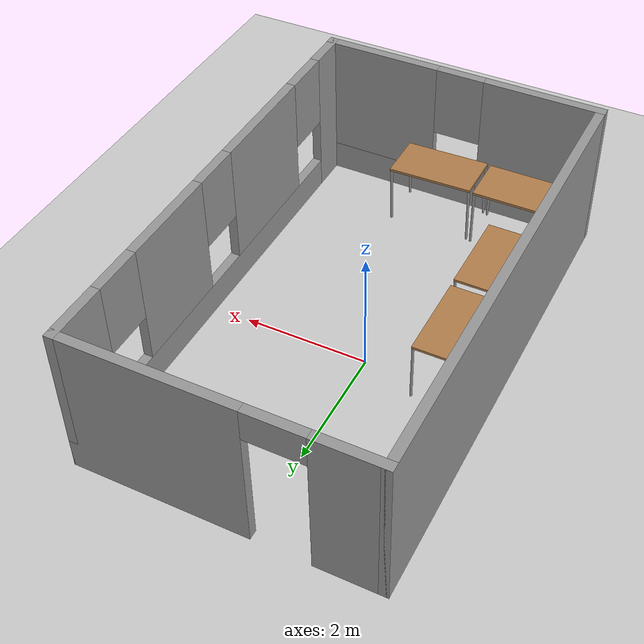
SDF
<sdf version="1.6">
 <world name="default">
  <light name="sun" type="directional">
   <pose>0 0 10 0 -0 0</pose>
   <diffuse>0.8 0.8 0.8 1</diffuse>
   <specular>0.1 0.1 0.1 1</specular>
   <attenuation>
    <range>1000</range>
    <constant>0.9</constant>
    <linear>0.01</linear>
    <quadratic>0.001</quadratic>
   </attenuation>
   <direction>-0.5 0.5 -1</direction>
  </light>
  <model name="ground_plane">
   <static>1</static>
   <link name="link">
    <collision name="collision">
     <geometry><plane><normal>0 0 1</normal><size>100 100</size></plane></geometry>
     <surface><friction><ode><mu>100</mu><mu2>50</mu2></ode></friction></surface>
    </collision>
    <visual name="visual">
     <cast_shadows>0</cast_shadows>
     <geometry><plane><normal>0 0 1</normal><size>100 100</size></plane></geometry>
     <material>
      <script><uri>file://media/materials/scripts/gazebo.material</uri><name>Gazebo/Grey</name></script>
     </material>
    </visual>
   </link>
  </model>
  <gravity>0 0 -9.8</gravity>
  <magnetic_field>6e-06 2.3e-05 -4.2e-05</magnetic_field>
  <atmosphere type="adiabatic"/>
  <physics name="default_physics" default="0" type="ode">
   <max_step_size>0.001</max_step_size>
   <real_time_factor>1</real_time_factor>
   <real_time_update_rate>1000</real_time_update_rate>
  </physics>
  <scene><ambient>0.4 0.4 0.4 1</ambient><background>0.7 0.7 0.7 1</background><shadows>1</shadows></scene>
  <spherical_coordinates>
   <surface_model>EARTH_WGS84</surface_model>
   <latitude_deg>0</latitude_deg>
   <longitude_deg>0</longitude_deg>
   <elevation>0</elevation>
   <heading_deg>0</heading_deg>
  </spherical_coordinates>
  <model name="Surveillance_room">
   <pose>0.34865 -0.391231 0 0 -0 0</pose>
   <link name="Wall_14">
    <collision name="Wall_14_Collision">
     <geometry><box><size>7.75 0.15 2.5</size></box></geometry>
     <pose>0 0 1.25 0 -0 0</pose>
    </collision>
    <visual name="Wall_14_Visual">
     <pose>0 0 1.25 0 -0 0</pose>
     <geometry><box><size>7.75 0.15 2.5</size></box></geometry>
     <material>
      <script><uri>file://media/materials/scripts/gazebo.material</uri><name>Gazebo/Grey</name></script>
      <ambient>1 1 1 1</ambient>
     </material>
    </visual>
    <pose>-2.3 0 0 0 -0 1.5708</pose>
   </link>
   <link name="Wall_18">
    <pose>0 -3.8 0 0 -0 0</pose>
    <visual name="Wall_18_Visual_0">
     <pose>-1.38437 0 1.25 0 -0 0</pose>
     <geometry><box><size>1.98127 0.15 2.5</size></box></geometry>
     <material>
      <script><uri>file://media/materials/scripts/gazebo.material</uri><name>Gazebo/Grey</name></script>
      <ambient>1 1 1 1</ambient>
     </material>
    </visual>
    <collision name="Wall_18_Collision_0">
     <geometry><box><size>1.98127 0.15 2.5</size></box></geometry>
     <pose>-1.38437 0 1.25 0 -0 0</pose>
    </collision>
    <visual name="Wall_18_Visual_1">
     <pose>0.990633 0 0.25 0 -0 0</pose>
     <geometry><box><size>2.76873 0.15 0.5</size></box></geometry>
     <material>
      <script><uri>file://media/materials/scripts/gazebo.material</uri><name>Gazebo/Grey</name></script>
      <ambient>1 1 1 1</ambient>
     </material>
    </visual>
    <collision name="Wall_18_Collision_1">
     <geometry><box><size>2.76873 0.15 0.5</size></box></geometry>
     <pose>0.990633 0 0.25 0 -0 0</pose>
    </collision>
    <visual name="Wall_18_Visual_2">
     <pose>1.39063 0 1.5 0 -0 0</pose>
     <geometry><box><size>1.96873 0.15 2</size></box></geometry>
     <material>
      <script><uri>file://media/materials/scripts/gazebo.material</uri><name>Gazebo/Grey</name></script>
      <ambient>1 1 1 1</ambient>
     </material>
    </visual>
    <collision name="Wall_18_Collision_2">
     <geometry><box><size>1.96873 0.15 2</size></box></geometry>
     <pose>1.39063 0 1.5 0 -0 0</pose>
    </collision>
    <visual name="Wall_18_Visual_3">
     <pose>0.006267 0 1.9 0 -0 0</pose>
     <geometry><box><size>0.8 0.15 1.2</size></box></geometry>
     <material>
      <script><uri>file://media/materials/scripts/gazebo.material</uri><name>Gazebo/Grey</name></script>
      <ambient>1 1 1 1</ambient>
     </material>
    </visual>
    <collision name="Wall_18_Collision_3">
     <geometry><box><size>0.8 0.15 1.2</size></box></geometry>
     <pose>0.006267 0 1.9 0 -0 0</pose>
    </collision>
   </link>
   <link name="Wall_20">
    <pose>2.3 0 0 0 -0 1.5708</pose>
    <visual name="Wall_20_Visual_0">
     <pose>-3.50746 0 1.25 0 -0 0</pose>
     <geometry><box><size>0.735088 0.15 2.5</size></box></geometry>
     <material>
      <script><uri>file://media/materials/scripts/gazebo.material</uri><name>Gazebo/Grey</name></script>
      <ambient>1 1 1 1</ambient>
     </material>
    </visual>
    <collision name="Wall_20_Collision_0">
     <geometry><box><size>0.735088 0.15 2.5</size></box></geometry>
     <pose>-3.50746 0 1.25 0 -0 0</pose>
    </collision>
    <visual name="Wall_20_Visual_1">
     <pose>0.367544 0 0.25 0 -0 0</pose>
     <geometry><box><size>7.01491 0.15 0.5</size></box></geometry>
     <material>
      <script><uri>file://media/materials/scripts/gazebo.material</uri><name>Gazebo/Grey</name></script>
      <ambient>1 1 1 1</ambient>
     </material>
    </visual>
    <collision name="Wall_20_Collision_1">
     <geometry><box><size>7.01491 0.15 0.5</size></box></geometry>
     <pose>0.367544 0 0.25 0 -0 0</pose>
    </collision>
    <visual name="Wall_20_Visual_2">
     <pose>-1.3582 0 1.5 0 -0 0</pose>
     <geometry><box><size>1.96343 0.15 2</size></box></geometry>
     <material>
      <script><uri>file://media/materials/scripts/gazebo.material</uri><name>Gazebo/Grey</name></script>
      <ambient>1 1 1 1</ambient>
     </material>
    </visual>
    <collision name="Wall_20_Collision_2">
     <geometry><box><size>1.96343 0.15 2</size></box></geometry>
     <pose>-1.3582 0 1.5 0 -0 0</pose>
    </collision>
    <visual name="Wall_20_Visual_3">
     <pose>1.25145 0 1.5 0 -0 0</pose>
     <geometry><box><size>1.65587 0.15 2</size></box></geometry>
     <material>
      <script><uri>file://media/materials/scripts/gazebo.material</uri><name>Gazebo/Grey</name></script>
      <ambient>1 1 1 1</ambient>
     </material>
    </visual>
    <collision name="Wall_20_Collision_3">
     <geometry><box><size>1.65587 0.15 2</size></box></geometry>
     <pose>1.25145 0 1.5 0 -0 0</pose>
    </collision>
    <visual name="Wall_20_Visual_4">
     <pose>3.3772 0 1.5 0 -0 0</pose>
     <geometry><box><size>0.995608 0.15 2</size></box></geometry>
     <material>
      <script><uri>file://media/materials/scripts/gazebo.material</uri><name>Gazebo/Grey</name></script>
      <ambient>1 1 1 1</ambient>
     </material>
    </visual>
    <collision name="Wall_20_Collision_4">
     <geometry><box><size>0.995608 0.15 2</size></box></geometry>
     <pose>3.3772 0 1.5 0 -0 0</pose>
    </collision>
    <visual name="Wall_20_Visual_5">
     <pose>-2.73991 0 1.9 0 -0 0</pose>
     <geometry><box><size>0.8 0.15 1.2</size></box></geometry>
     <material>
      <script><uri>file://media/materials/scripts/gazebo.material</uri><name>Gazebo/Grey</name></script>
      <ambient>1 1 1 1</ambient>
     </material>
    </visual>
    <collision name="Wall_20_Collision_5">
     <geometry><box><size>0.8 0.15 1.2</size></box></geometry>
     <pose>-2.73991 0 1.9 0 -0 0</pose>
    </collision>
    <visual name="Wall_20_Visual_6">
     <pose>0.023517 0 1.9 0 -0 0</pose>
     <geometry><box><size>0.8 0.15 1.2</size></box></geometry>
     <material>
      <script><uri>file://media/materials/scripts/gazebo.material</uri><name>Gazebo/Grey</name></script>
      <ambient>1 1 1 1</ambient>
     </material>
    </visual>
    <collision name="Wall_20_Collision_6">
     <geometry><box><size>0.8 0.15 1.2</size></box></geometry>
     <pose>0.023517 0 1.9 0 -0 0</pose>
    </collision>
    <visual name="Wall_20_Visual_7">
     <pose>2.47939 0 1.9 0 -0 0</pose>
     <geometry><box><size>0.8 0.15 1.2</size></box></geometry>
     <material>
      <script><uri>file://media/materials/scripts/gazebo.material</uri><name>Gazebo/Grey</name></script>
      <ambient>1 1 1 1</ambient>
     </material>
    </visual>
    <collision name="Wall_20_Collision_7">
     <geometry><box><size>0.8 0.15 1.2</size></box></geometry>
     <pose>2.47939 0 1.9 0 -0 0</pose>
    </collision>
   </link>
   <link name="Wall_22">
    <pose>0 3.8 0 0 -0 0</pose>
    <visual name="Wall_22_Visual_0">
     <pose>-1.83389 0 1.25 0 -0 0</pose>
     <geometry><box><size>1.08222 0.15 2.5</size></box></geometry>
     <material>
      <script><uri>file://media/materials/scripts/gazebo.material</uri><name>Gazebo/Grey</name></script>
      <ambient>1 1 1 1</ambient>
     </material>
    </visual>
    <collision name="Wall_22_Collision_0">
     <geometry><box><size>1.08222 0.15 2.5</size></box></geometry>
     <pose>-1.83389 0 1.25 0 -0 0</pose>
    </collision>
    <visual name="Wall_22_Visual_1">
     <pose>0.991112 0 1.25 0 -0 0</pose>
     <geometry><box><size>2.76778 0.15 2.5</size></box></geometry>
     <material>
      <script><uri>file://media/materials/scripts/gazebo.material</uri><name>Gazebo/Grey</name></script>
      <ambient>1 1 1 1</ambient>
     </material>
    </visual>
    <collision name="Wall_22_Collision_1">
     <geometry><box><size>2.76778 0.15 2.5</size></box></geometry>
     <pose>0.991112 0 1.25 0 -0 0</pose>
    </collision>
    <visual name="Wall_22_Visual_2">
     <pose>-0.842776 0 2.25 0 -0 0</pose>
     <geometry><box><size>0.9 0.15 0.5</size></box></geometry>
     <material>
      <script><uri>file://media/materials/scripts/gazebo.material</uri><name>Gazebo/Grey</name></script>
      <ambient>1 1 1 1</ambient>
     </material>
    </visual>
    <collision name="Wall_22_Collision_2">
     <geometry><box><size>0.9 0.15 0.5</size></box></geometry>
     <pose>-0.842776 0 2.25 0 -0 0</pose>
    </collision>
   </link>
   <static>1</static>
  </model>
  <model name="table_0">
   <static>0</static>
   <link name="link">
    <collision name="surface">
     <pose>0 0 1 0 -0 0</pose>
     <geometry><box><size>1.5 0.8 0.03</size></box></geometry>
     <surface><friction><ode><mu>0.6</mu><mu2>0.6</mu2></ode></friction></surface>
    </collision>
    <visual name="visual1">
     <pose>0 0 1 0 -0 0</pose>
     <geometry><box><size>1.4 0.8 0.04</size></box></geometry>
     <material>
      <script><uri>file://media/materials/scripts/gazebo.material</uri><name>Gazebo/Wood</name></script>
     </material>
    </visual>
    <collision name="front_left_leg">
     <pose>0.68 0.38 0.5 0 -0 0</pose>
     <geometry><cylinder><radius>0.02</radius><length>1</length></cylinder></geometry>
    </collision>
    <visual name="front_left_leg">
     <pose>0.68 0.38 0.5 0 -0 0</pose>
     <geometry><cylinder><radius>0.02</radius><length>1</length></cylinder></geometry>
     <material>
      <script><uri>file://media/materials/scripts/gazebo.material</uri><name>Gazebo/Grey</name></script>
     </material>
    </visual>
    <collision name="front_right_leg">
     <pose>0.68 -0.38 0.5 0 -0 0</pose>
     <geometry><cylinder><radius>0.02</radius><length>1</length></cylinder></geometry>
    </collision>
    <visual name="front_right_leg">
     <pose>0.68 -0.38 0.5 0 -0 0</pose>
     <geometry><cylinder><radius>0.02</radius><length>1</length></cylinder></geometry>
     <material>
      <script><uri>file://media/materials/scripts/gazebo.material</uri><name>Gazebo/Grey</name></script>
     </material>
    </visual>
    <collision name="back_right_leg">
     <pose>-0.68 -0.38 0.5 0 -0 0</pose>
     <geometry><cylinder><radius>0.02</radius><length>1</length></cylinder></geometry>
    </collision>
    <visual name="back_right_leg">
     <pose>-0.68 -0.38 0.5 0 -0 0</pose>
     <geometry><cylinder><radius>0.02</radius><length>1</length></cylinder></geometry>
     <material>
      <script><uri>file://media/materials/scripts/gazebo.material</uri><name>Gazebo/Grey</name></script>
     </material>
    </visual>
    <collision name="back_left_leg">
     <pose>-0.68 0.38 0.5 0 -0 0</pose>
     <geometry><cylinder><radius>0.02</radius><length>1</length></cylinder></geometry>
    </collision>
    <visual name="back_left_leg">
     <pose>-0.68 0.38 0.5 0 -0 0</pose>
     <geometry><cylinder><radius>0.02</radius><length>1</length></cylinder></geometry>
     <material>
      <script><uri>file://media/materials/scripts/gazebo.material</uri><name>Gazebo/Grey</name></script>
     </material>
    </visual>
    <inertial>
     <inertia><ixx>1</ixx><ixy>0</ixy><ixz>0</ixz><iyy>1</iyy><iyz>0</iyz><izz>1</izz></inertia>
     <mass>1</mass>
    </inertial>
   </link>
   <pose>-1.02311 -3.64178 -9e-06 0 -0 0.00331</pose>
  </model>
  <model name="table_1">
   <static>0</static>
   <link name="link">
    <collision name="surface">
     <pose>0 0 1 0 -0 0</pose>
     <geometry><box><size>1.5 0.8 0.03</size></box></geometry>
     <surface><friction><ode><mu>0.6</mu><mu2>0.6</mu2></ode></friction></surface>
    </collision>
    <visual name="visual1">
     <pose>0 0 1 0 -0 0</pose>
     <geometry><box><size>1.4 0.8 0.04</size></box></geometry>
     <material>
      <script><uri>file://media/materials/scripts/gazebo.material</uri><name>Gazebo/Wood</name></script>
     </material>
    </visual>
    <collision name="front_left_leg">
     <pose>0.68 0.38 0.5 0 -0 0</pose>
     <geometry><cylinder><radius>0.02</radius><length>1</length></cylinder></geometry>
    </collision>
    <visual name="front_left_leg">
     <pose>0.68 0.38 0.5 0 -0 0</pose>
     <geometry><cylinder><radius>0.02</radius><length>1</length></cylinder></geometry>
     <material>
      <script><uri>file://media/materials/scripts/gazebo.material</uri><name>Gazebo/Grey</name></script>
     </material>
    </visual>
    <collision name="front_right_leg">
     <pose>0.68 -0.38 0.5 0 -0 0</pose>
     <geometry><cylinder><radius>0.02</radius><length>1</length></cylinder></geometry>
    </collision>
    <visual name="front_right_leg">
     <pose>0.68 -0.38 0.5 0 -0 0</pose>
     <geometry><cylinder><radius>0.02</radius><length>1</length></cylinder></geometry>
     <material>
      <script><uri>file://media/materials/scripts/gazebo.material</uri><name>Gazebo/Grey</name></script>
     </material>
    </visual>
    <collision name="back_right_leg">
     <pose>-0.68 -0.38 0.5 0 -0 0</pose>
     <geometry><cylinder><radius>0.02</radius><length>1</length></cylinder></geometry>
    </collision>
    <visual name="back_right_leg">
     <pose>-0.68 -0.38 0.5 0 -0 0</pose>
     <geometry><cylinder><radius>0.02</radius><length>1</length></cylinder></geometry>
     <material>
      <script><uri>file://media/materials/scripts/gazebo.material</uri><name>Gazebo/Grey</name></script>
     </material>
    </visual>
    <collision name="back_left_leg">
     <pose>-0.68 0.38 0.5 0 -0 0</pose>
     <geometry><cylinder><radius>0.02</radius><length>1</length></cylinder></geometry>
    </collision>
    <visual name="back_left_leg">
     <pose>-0.68 0.38 0.5 0 -0 0</pose>
     <geometry><cylinder><radius>0.02</radius><length>1</length></cylinder></geometry>
     <material>
      <script><uri>file://media/materials/scripts/gazebo.material</uri><name>Gazebo/Grey</name></script>
     </material>
    </visual>
    <inertial>
     <inertia><ixx>1</ixx><ixy>0</ixy><ixz>0</ixz><iyy>1</iyy><iyz>0</iyz><izz>1</izz></inertia>
     <mass>1</mass>
    </inertial>
   </link>
   <pose>0.40606 -3.62353 0.015099 0 0.021572 0.003311</pose>
  </model>
  <model name="table_2">
   <static>0</static>
   <link name="link">
    <collision name="surface">
     <pose>0 0 1 0 -0 0</pose>
     <geometry><box><size>1.5 0.8 0.03</size></box></geometry>
     <surface><friction><ode><mu>0.6</mu><mu2>0.6</mu2></ode></friction></surface>
    </collision>
    <visual name="visual1">
     <pose>0 0 1 0 -0 0</pose>
     <geometry><box><size>1.4 0.8 0.04</size></box></geometry>
     <material>
      <script><uri>file://media/materials/scripts/gazebo.material</uri><name>Gazebo/Wood</name></script>
     </material>
    </visual>
    <collision name="front_left_leg">
     <pose>0.68 0.38 0.5 0 -0 0</pose>
     <geometry><cylinder><radius>0.02</radius><length>1</length></cylinder></geometry>
    </collision>
    <visual name="front_left_leg">
     <pose>0.68 0.38 0.5 0 -0 0</pose>
     <geometry><cylinder><radius>0.02</radius><length>1</length></cylinder></geometry>
     <material>
      <script><uri>file://media/materials/scripts/gazebo.material</uri><name>Gazebo/Grey</name></script>
     </material>
    </visual>
    <collision name="front_right_leg">
     <pose>0.68 -0.38 0.5 0 -0 0</pose>
     <geometry><cylinder><radius>0.02</radius><length>1</length></cylinder></geometry>
    </collision>
    <visual name="front_right_leg">
     <pose>0.68 -0.38 0.5 0 -0 0</pose>
     <geometry><cylinder><radius>0.02</radius><length>1</length></cylinder></geometry>
     <material>
      <script><uri>file://media/materials/scripts/gazebo.material</uri><name>Gazebo/Grey</name></script>
     </material>
    </visual>
    <collision name="back_right_leg">
     <pose>-0.68 -0.38 0.5 0 -0 0</pose>
     <geometry><cylinder><radius>0.02</radius><length>1</length></cylinder></geometry>
    </collision>
    <visual name="back_right_leg">
     <pose>-0.68 -0.38 0.5 0 -0 0</pose>
     <geometry><cylinder><radius>0.02</radius><length>1</length></cylinder></geometry>
     <material>
      <script><uri>file://media/materials/scripts/gazebo.material</uri><name>Gazebo/Grey</name></script>
     </material>
    </visual>
    <collision name="back_left_leg">
     <pose>-0.68 0.38 0.5 0 -0 0</pose>
     <geometry><cylinder><radius>0.02</radius><length>1</length></cylinder></geometry>
    </collision>
    <visual name="back_left_leg">
     <pose>-0.68 0.38 0.5 0 -0 0</pose>
     <geometry><cylinder><radius>0.02</radius><length>1</length></cylinder></geometry>
     <material>
      <script><uri>file://media/materials/scripts/gazebo.material</uri><name>Gazebo/Grey</name></script>
     </material>
    </visual>
    <inertial>
     <inertia><ixx>1</ixx><ixy>0</ixy><ixz>0</ixz><iyy>1</iyy><iyz>0</iyz><izz>1</izz></inertia>
     <mass>1</mass>
    </inertial>
   </link>
   <pose>-1.25 -1.91701 -2e-06 0 -0 1.57</pose>
  </model>
  <model name="table_2_clone">
   <static>0</static>
   <link name="link">
    <collision name="surface">
     <pose>0 0 1 0 -0 0</pose>
     <geometry><box><size>1.5 0.8 0.03</size></box></geometry>
     <surface><friction><ode><mu>0.6</mu><mu2>0.6</mu2></ode></friction></surface>
    </collision>
    <visual name="visual1">
     <pose>0 0 1 0 -0 0</pose>
     <geometry><box><size>1.4 0.8 0.04</size></box></geometry>
     <material>
      <script><uri>file://media/materials/scripts/gazebo.material</uri><name>Gazebo/Wood</name></script>
     </material>
    </visual>
    <collision name="front_left_leg">
     <pose>0.68 0.38 0.5 0 -0 0</pose>
     <geometry><cylinder><radius>0.02</radius><length>1</length></cylinder></geometry>
    </collision>
    <visual name="front_left_leg">
     <pose>0.68 0.38 0.5 0 -0 0</pose>
     <geometry><cylinder><radius>0.02</radius><length>1</length></cylinder></geometry>
     <material>
      <script><uri>file://media/materials/scripts/gazebo.material</uri><name>Gazebo/Grey</name></script>
     </material>
    </visual>
    <collision name="front_right_leg">
     <pose>0.68 -0.38 0.5 0 -0 0</pose>
     <geometry><cylinder><radius>0.02</radius><length>1</length></cylinder></geometry>
    </collision>
    <visual name="front_right_leg">
     <pose>0.68 -0.38 0.5 0 -0 0</pose>
     <geometry><cylinder><radius>0.02</radius><length>1</length></cylinder></geometry>
     <material>
      <script><uri>file://media/materials/scripts/gazebo.material</uri><name>Gazebo/Grey</name></script>
     </material>
    </visual>
    <collision name="back_right_leg">
     <pose>-0.68 -0.38 0.5 0 -0 0</pose>
     <geometry><cylinder><radius>0.02</radius><length>1</length></cylinder></geometry>
    </collision>
    <visual name="back_right_leg">
     <pose>-0.68 -0.38 0.5 0 -0 0</pose>
     <geometry><cylinder><radius>0.02</radius><length>1</length></cylinder></geometry>
     <material>
      <script><uri>file://media/materials/scripts/gazebo.material</uri><name>Gazebo/Grey</name></script>
     </material>
    </visual>
    <collision name="back_left_leg">
     <pose>-0.68 0.38 0.5 0 -0 0</pose>
     <geometry><cylinder><radius>0.02</radius><length>1</length></cylinder></geometry>
    </collision>
    <visual name="back_left_leg">
     <pose>-0.68 0.38 0.5 0 -0 0</pose>
     <geometry><cylinder><radius>0.02</radius><length>1</length></cylinder></geometry>
     <material>
      <script><uri>file://media/materials/scripts/gazebo.material</uri><name>Gazebo/Grey</name></script>
     </material>
    </visual>
    <inertial>
     <inertia><ixx>1</ixx><ixy>0</ixy><ixz>0</ixz><iyy>1</iyy><iyz>0</iyz><izz>1</izz></inertia>
     <mass>1</mass>
    </inertial>
   </link>
   <pose>-1.25908 -0.380133 -2e-06 0 -0 1.57</pose>
  </model>
 </world>
</sdf>
